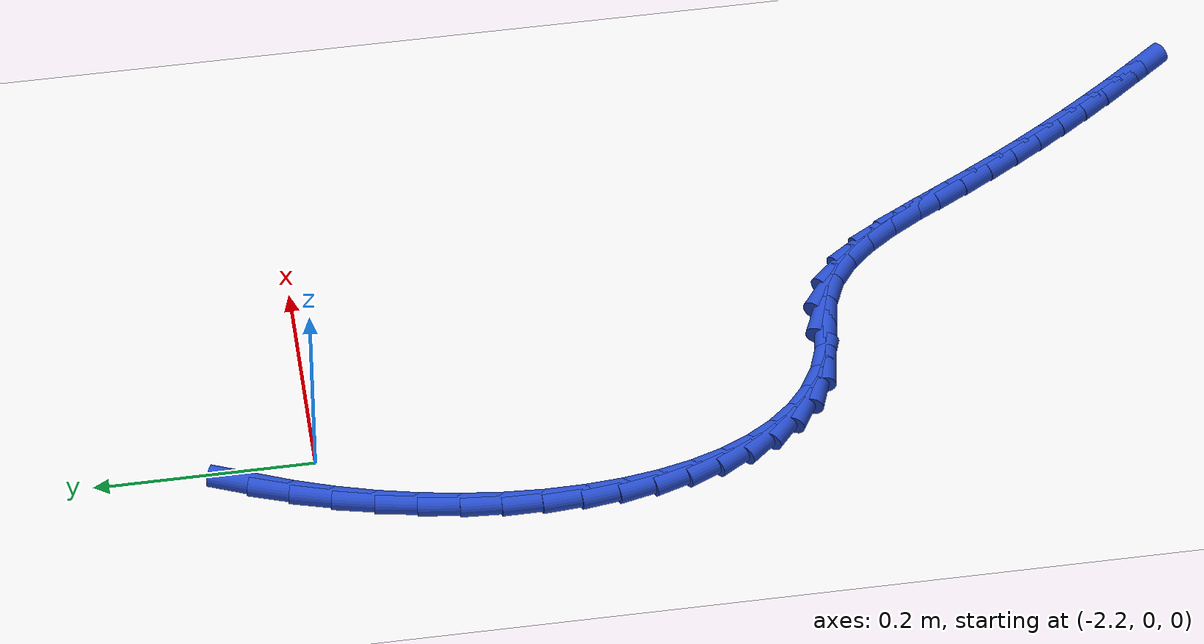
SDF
<sdf version="1.6">
 <world name="default">
  <model name="ground_plane">
   <static>1</static>
   <link name="link">
    <collision name="collision">
     <geometry><plane><normal>0 0 1</normal><size>100 100</size></plane></geometry>
     <surface><friction><ode><mu>100</mu><mu2>50</mu2></ode></friction></surface>
    </collision>
    <visual name="visual">
     <cast_shadows>0</cast_shadows>
     <geometry><plane><normal>0 0 1</normal><size>100 100</size></plane></geometry>
     <material>
      <script><uri>file://media/materials/scripts/gazebo.material</uri><name>Gazebo/WhiteGlow</name></script>
     </material>
    </visual>
   </link>
  </model>
  <model name="line">
   <link name="link_144">
    <pose>-2.2232935178708875 0.05914343181187651 0.01 0 1.57 1.1909581856564386</pose>
    <collision name="collision">
     <geometry><cylinder><radius>0.01</radius><length>0.08</length></cylinder></geometry>
    </collision>
    <visual name="visual">
     <material>
      <script><name>Gazebo/Blue</name><uri>file://media/materials/scripts/gazebo.material</uri></script>
     </material>
     <geometry><cylinder><radius>0.01</radius><length>0.08</length></cylinder></geometry>
    </visual>
   </link>
   <link name="link_145">
    <pose>-2.2371132504783184 0.024527035637812396 0.01 0 1.57 1.2481064616466884</pose>
    <collision name="collision">
     <geometry><cylinder><radius>0.01</radius><length>0.08</length></cylinder></geometry>
    </collision>
    <visual name="visual">
     <material>
      <script><name>Gazebo/Blue</name><uri>file://media/materials/scripts/gazebo.material</uri></script>
     </material>
     <geometry><cylinder><radius>0.01</radius><length>0.08</length></cylinder></geometry>
    </visual>
   </link>
   <link name="link_146">
    <pose>-2.249092417443977 -0.011298259810260046 0.01 0 1.57 1.302683260764088</pose>
    <collision name="collision">
     <geometry><cylinder><radius>0.01</radius><length>0.08</length></cylinder></geometry>
    </collision>
    <visual name="visual">
     <material>
      <script><name>Gazebo/Blue</name><uri>file://media/materials/scripts/gazebo.material</uri></script>
     </material>
     <geometry><cylinder><radius>0.01</radius><length>0.08</length></cylinder></geometry>
    </visual>
   </link>
   <link name="link_147">
    <pose>-2.259172961597374 -0.04799111259833887 0.01 0 1.57 1.3558952616473168</pose>
    <collision name="collision">
     <geometry><cylinder><radius>0.01</radius><length>0.08</length></cylinder></geometry>
    </collision>
    <visual name="visual">
     <material>
      <script><name>Gazebo/Blue</name><uri>file://media/materials/scripts/gazebo.material</uri></script>
     </material>
     <geometry><cylinder><radius>0.01</radius><length>0.08</length></cylinder></geometry>
    </visual>
   </link>
   <link name="link_148">
    <pose>-2.2672968257680237 -0.08521018079242569 0.01 0 1.57 1.4088974125330715</pose>
    <collision name="collision">
     <geometry><cylinder><radius>0.01</radius><length>0.08</length></cylinder></geometry>
    </collision>
    <visual name="visual">
     <material>
      <script><name>Gazebo/Blue</name><uri>file://media/materials/scripts/gazebo.material</uri></script>
     </material>
     <geometry><cylinder><radius>0.01</radius><length>0.08</length></cylinder></geometry>
    </visual>
   </link>
   <link name="link_149">
    <pose>-2.2734059527854384 -0.12261412245852099 0.01 0 1.57 1.4628522664942227</pose>
    <collision name="collision">
     <geometry><cylinder><radius>0.01</radius><length>0.08</length></cylinder></geometry>
    </collision>
    <visual name="visual">
     <material>
      <script><name>Gazebo/Blue</name><uri>file://media/materials/scripts/gazebo.material</uri></script>
     </material>
     <geometry><cylinder><radius>0.01</radius><length>0.08</length></cylinder></geometry>
    </visual>
   </link>
   <link name="link_150">
    <pose>-2.2774422854791307 -0.15986159566262514 0.01 0 1.57 1.5189924134073636</pose>
    <collision name="collision">
     <geometry><cylinder><radius>0.01</radius><length>0.08</length></cylinder></geometry>
    </collision>
    <visual name="visual">
     <material>
      <script><name>Gazebo/Blue</name><uri>file://media/materials/scripts/gazebo.material</uri></script>
     </material>
     <geometry><cylinder><radius>0.01</radius><length>0.08</length></cylinder></geometry>
    </visual>
   </link>
   <link name="link_151">
    <pose>-2.279347766678613 -0.1966112584707386 0.01 0 1.57 -1.5629038859340165</pose>
    <collision name="collision">
     <geometry><cylinder><radius>0.01</radius><length>0.08</length></cylinder></geometry>
    </collision>
    <visual name="visual">
     <material>
      <script><name>Gazebo/Blue</name><uri>file://media/materials/scripts/gazebo.material</uri></script>
     </material>
     <geometry><cylinder><radius>0.01</radius><length>0.08</length></cylinder></geometry>
    </visual>
   </link>
   <link name="link_152">
    <pose>-2.2790643392133982 -0.2325217689488618 0.01 0 1.57 -1.4980658673511302</pose>
    <collision name="collision">
     <geometry><cylinder><radius>0.01</radius><length>0.08</length></cylinder></geometry>
    </collision>
    <visual name="visual">
     <material>
      <script><name>Gazebo/Blue</name><uri>file://media/materials/scripts/gazebo.material</uri></script>
     </material>
     <geometry><cylinder><radius>0.01</radius><length>0.08</length></cylinder></geometry>
    </visual>
   </link>
   <link name="link_153">
    <pose>-2.2765339459129996 -0.2672517851629953 0.01 0 1.57 -1.4262033079237824</pose>
    <collision name="collision">
     <geometry><cylinder><radius>0.01</radius><length>0.08</length></cylinder></geometry>
    </collision>
    <visual name="visual">
     <material>
      <script><name>Gazebo/Blue</name><uri>file://media/materials/scripts/gazebo.material</uri></script>
     </material>
     <geometry><cylinder><radius>0.01</radius><length>0.08</length></cylinder></geometry>
    </visual>
   </link>
   <link name="link_154">
    <pose>-2.2716985296069296 -0.3004599651791394 0.01 0 1.57 -1.3450568398601315</pose>
    <collision name="collision">
     <geometry><cylinder><radius>0.01</radius><length>0.08</length></cylinder></geometry>
    </collision>
    <visual name="visual">
     <material>
      <script><name>Gazebo/Blue</name><uri>file://media/materials/scripts/gazebo.material</uri></script>
     </material>
     <geometry><cylinder><radius>0.01</radius><length>0.08</length></cylinder></geometry>
    </visual>
   </link>
   <link name="link_155">
    <pose>-2.2645000331247 -0.3318049670632955 0.01 0 1.57 -1.2519474254234912</pose>
    <collision name="collision">
     <geometry><cylinder><radius>0.01</radius><length>0.08</length></cylinder></geometry>
    </collision>
    <visual name="visual">
     <material>
      <script><name>Gazebo/Blue</name><uri>file://media/materials/scripts/gazebo.material</uri></script>
     </material>
     <geometry><cylinder><radius>0.01</radius><length>0.08</length></cylinder></geometry>
    </visual>
   </link>
   <link name="link_156">
    <pose>-2.254880399295824 -0.36094544888146207 0.01 0 1.57 -1.1438458834669276</pose>
    <collision name="collision">
     <geometry><cylinder><radius>0.01</radius><length>0.08</length></cylinder></geometry>
    </collision>
    <visual name="visual">
     <material>
      <script><name>Gazebo/Blue</name><uri>file://media/materials/scripts/gazebo.material</uri></script>
     </material>
     <geometry><cylinder><radius>0.01</radius><length>0.08</length></cylinder></geometry>
    </visual>
   </link>
   <link name="link_157">
    <pose>-2.2427815709498153 -0.38754006869964075 0.01 0 1.57 -1.0177076871214064</pose>
    <collision name="collision">
     <geometry><cylinder><radius>0.01</radius><length>0.08</length></cylinder></geometry>
    </collision>
    <visual name="visual">
     <material>
      <script><name>Gazebo/Blue</name><uri>file://media/materials/scripts/gazebo.material</uri></script>
     </material>
     <geometry><cylinder><radius>0.01</radius><length>0.08</length></cylinder></geometry>
    </visual>
   </link>
   <link name="link_158">
    <pose>-2.2281454909161855 -0.41124748458383176 0.01 0 1.57 -0.8713028719395888</pose>
    <collision name="collision">
     <geometry><cylinder><radius>0.01</radius><length>0.08</length></cylinder></geometry>
    </collision>
    <visual name="visual">
     <material>
      <script><name>Gazebo/Blue</name><uri>file://media/materials/scripts/gazebo.material</uri></script>
     </material>
     <geometry><cylinder><radius>0.01</radius><length>0.08</length></cylinder></geometry>
    </visual>
   </link>
   <link name="link_159">
    <pose>-2.2109141020244483 -0.43172635460003567 0.01 0 1.57 -0.7046966637945786</pose>
    <collision name="collision">
     <geometry><cylinder><radius>0.01</radius><length>0.08</length></cylinder></geometry>
    </collision>
    <visual name="visual">
     <material>
      <script><name>Gazebo/Blue</name><uri>file://media/materials/scripts/gazebo.material</uri></script>
     </material>
     <geometry><cylinder><radius>0.01</radius><length>0.08</length></cylinder></geometry>
    </visual>
   </link>
   <link name="link_160">
    <pose>-2.191029347104115 -0.4486353368142528 0.01 0 1.57 -0.5219988983153278</pose>
    <collision name="collision">
     <geometry><cylinder><radius>0.01</radius><length>0.08</length></cylinder></geometry>
    </collision>
    <visual name="visual">
     <material>
      <script><name>Gazebo/Blue</name><uri>file://media/materials/scripts/gazebo.material</uri></script>
     </material>
     <geometry><cylinder><radius>0.01</radius><length>0.08</length></cylinder></geometry>
    </visual>
   </link>
   <link name="link_161">
    <pose>-2.1684331689846994 -0.4616330892924838 0.01 0 1.57 -0.3320031634079429</pose>
    <collision name="collision">
     <geometry><cylinder><radius>0.01</radius><length>0.08</length></cylinder></geometry>
    </collision>
    <visual name="visual">
     <material>
      <script><name>Gazebo/Blue</name><uri>file://media/materials/scripts/gazebo.material</uri></script>
     </material>
     <geometry><cylinder><radius>0.01</radius><length>0.08</length></cylinder></geometry>
    </visual>
   </link>
   <link name="link_162">
    <pose>-2.143067510495714 -0.47037827010072886 0.01 0 1.57 -0.168473446146424</pose>
    <collision name="collision">
     <geometry><cylinder><radius>0.01</radius><length>0.08</length></cylinder></geometry>
    </collision>
    <visual name="visual">
     <material>
      <script><name>Gazebo/Blue</name><uri>file://media/materials/scripts/gazebo.material</uri></script>
     </material>
     <geometry><cylinder><radius>0.01</radius><length>0.08</length></cylinder></geometry>
    </visual>
   </link>
   <link name="link_163">
    <pose>-2.1152047495696653 -0.47511732722055156 0.01 0 1.57 -0.17663507218185626</pose>
    <collision name="collision">
     <geometry><cylinder><radius>0.01</radius><length>0.08</length></cylinder></geometry>
    </collision>
    <visual name="visual">
     <material>
      <script><name>Gazebo/Blue</name><uri>file://media/materials/scripts/gazebo.material</uri></script>
     </material>
     <geometry><cylinder><radius>0.01</radius><length>0.08</length></cylinder></geometry>
    </visual>
   </link>
   <link name="link_164">
    <pose>-2.0873606721551594 -0.48008736397373003 0.01 0 1.57 -0.39094252216450837</pose>
    <collision name="collision">
     <geometry><cylinder><radius>0.01</radius><length>0.08</length></cylinder></geometry>
    </collision>
    <visual name="visual">
     <material>
      <script><name>Gazebo/Blue</name><uri>file://media/materials/scripts/gazebo.material</uri></script>
     </material>
     <geometry><cylinder><radius>0.01</radius><length>0.08</length></cylinder></geometry>
    </visual>
   </link>
   <link name="link_165">
    <pose>-2.062493756961471 -0.4903364400984581 0.01 0 1.57 -0.6362762082028802</pose>
    <collision name="collision">
     <geometry><cylinder><radius>0.01</radius><length>0.08</length></cylinder></geometry>
    </collision>
    <visual name="visual">
     <material>
      <script><name>Gazebo/Blue</name><uri>file://media/materials/scripts/gazebo.material</uri></script>
     </material>
     <geometry><cylinder><radius>0.01</radius><length>0.08</length></cylinder></geometry>
    </visual>
   </link>
   <link name="link_166">
    <pose>-2.0408939595307753 -0.5062937600247142 0.01 0 1.57 -0.8253453575427293</pose>
    <collision name="collision">
     <geometry><cylinder><radius>0.01</radius><length>0.08</length></cylinder></geometry>
    </collision>
    <visual name="visual">
     <material>
      <script><name>Gazebo/Blue</name><uri>file://media/materials/scripts/gazebo.material</uri></script>
     </material>
     <geometry><cylinder><radius>0.01</radius><length>0.08</length></cylinder></geometry>
    </visual>
   </link>
   <link name="link_167">
    <pose>-2.0219452116553547 -0.5268202731594737 0.01 0 1.57 -0.9559992593069658</pose>
    <collision name="collision">
     <geometry><cylinder><radius>0.01</radius><length>0.08</length></cylinder></geometry>
    </collision>
    <visual name="visual">
     <material>
      <script><name>Gazebo/Blue</name><uri>file://media/materials/scripts/gazebo.material</uri></script>
     </material>
     <geometry><cylinder><radius>0.01</radius><length>0.08</length></cylinder></geometry>
    </visual>
   </link>
   <link name="link_168">
    <pose>-2.005030712358862 -0.5507756605455167 0.01 0 1.57 -1.0373913053593904</pose>
    <collision name="collision">
     <geometry><cylinder><radius>0.01</radius><length>0.08</length></cylinder></geometry>
    </collision>
    <visual name="visual">
     <material>
      <script><name>Gazebo/Blue</name><uri>file://media/materials/scripts/gazebo.material</uri></script>
     </material>
     <geometry><cylinder><radius>0.01</radius><length>0.08</length></cylinder></geometry>
    </visual>
   </link>
   <link name="link_169">
    <pose>-1.989533660664949 -0.5770196032256224 0.01 0 1.57 -1.0783626423560906</pose>
    <collision name="collision">
     <geometry><cylinder><radius>0.01</radius><length>0.08</length></cylinder></geometry>
    </collision>
    <visual name="visual">
     <material>
      <script><name>Gazebo/Blue</name><uri>file://media/materials/scripts/gazebo.material</uri></script>
     </material>
     <geometry><cylinder><radius>0.01</radius><length>0.08</length></cylinder></geometry>
    </visual>
   </link>
   <link name="link_170">
    <pose>-1.9748372555972697 -0.6044117822425706 0.01 0 1.57 -1.0838154334837462</pose>
    <collision name="collision">
     <geometry><cylinder><radius>0.01</radius><length>0.08</length></cylinder></geometry>
    </collision>
    <visual name="visual">
     <material>
      <script><name>Gazebo/Blue</name><uri>file://media/materials/scripts/gazebo.material</uri></script>
     </material>
     <geometry><cylinder><radius>0.01</radius><length>0.08</length></cylinder></geometry>
    </visual>
   </link>
   <link name="link_171">
    <pose>-1.9603265804082974 -0.6318154234158408 0.01 0 1.57 -1.0658333946394771</pose>
    <collision name="collision">
     <geometry><cylinder><radius>0.01</radius><length>0.08</length></cylinder></geometry>
    </collision>
    <visual name="visual">
     <material>
      <script><name>Gazebo/Blue</name><uri>file://media/materials/scripts/gazebo.material</uri></script>
     </material>
     <geometry><cylinder><radius>0.01</radius><length>0.08</length></cylinder></geometry>
    </visual>
   </link>
   <link name="link_172">
    <pose>-1.9455897389411476 -0.6584756927255886 0.01 0 1.57 -1.0457022384111296</pose>
    <collision name="collision">
     <geometry><cylinder><radius>0.01</radius><length>0.08</length></cylinder></geometry>
    </collision>
    <visual name="visual">
     <material>
      <script><name>Gazebo/Blue</name><uri>file://media/materials/scripts/gazebo.material</uri></script>
     </material>
     <geometry><cylinder><radius>0.01</radius><length>0.08</length></cylinder></geometry>
    </visual>
   </link>
   <link name="link_173">
    <pose>-1.9305963668901465 -0.684355527369646 0.01 0 1.57 -1.025907415441177</pose>
    <collision name="collision">
     <geometry><cylinder><radius>0.01</radius><length>0.08</length></cylinder></geometry>
    </collision>
    <visual name="visual">
     <material>
      <script><name>Gazebo/Blue</name><uri>file://media/materials/scripts/gazebo.material</uri></script>
     </material>
     <geometry><cylinder><radius>0.01</radius><length>0.08</length></cylinder></geometry>
    </visual>
   </link>
   <link name="link_174">
    <pose>-1.9153582051173415 -0.7094970764842643 0.01 0 1.57 -1.006544773903409</pose>
    <collision name="collision">
     <geometry><cylinder><radius>0.01</radius><length>0.08</length></cylinder></geometry>
    </collision>
    <visual name="visual">
     <material>
      <script><name>Gazebo/Blue</name><uri>file://media/materials/scripts/gazebo.material</uri></script>
     </material>
     <geometry><cylinder><radius>0.01</radius><length>0.08</length></cylinder></geometry>
    </visual>
   </link>
   <link name="link_175">
    <pose>-1.8998869944847794 -0.7339424892056973 0.01 0 1.57 -0.9877109511625048</pose>
    <collision name="collision">
     <geometry><cylinder><radius>0.01</radius><length>0.08</length></cylinder></geometry>
    </collision>
    <visual name="visual">
     <material>
      <script><name>Gazebo/Blue</name><uri>file://media/materials/scripts/gazebo.material</uri></script>
     </material>
     <geometry><cylinder><radius>0.01</radius><length>0.08</length></cylinder></geometry>
    </visual>
   </link>
   <link name="link_176">
    <pose>-1.8841944758545064 -0.7577339146701978 0.01 0 1.57 -0.9695021869314759</pose>
    <collision name="collision">
     <geometry><cylinder><radius>0.01</radius><length>0.08</length></cylinder></geometry>
    </collision>
    <visual name="visual">
     <material>
      <script><name>Gazebo/Blue</name><uri>file://media/materials/scripts/gazebo.material</uri></script>
     </material>
     <geometry><cylinder><radius>0.01</radius><length>0.08</length></cylinder></geometry>
    </visual>
   </link>
   <link name="link_177">
    <pose>-1.8682923900885697 -0.7809135020140187 0.01 0 1.57 -0.9520131429325907</pose>
    <collision name="collision">
     <geometry><cylinder><radius>0.01</radius><length>0.08</length></cylinder></geometry>
    </collision>
    <visual name="visual">
     <material>
      <script><name>Gazebo/Blue</name><uri>file://media/materials/scripts/gazebo.material</uri></script>
     </material>
     <geometry><cylinder><radius>0.01</radius><length>0.08</length></cylinder></geometry>
    </visual>
   </link>
   <link name="link_178">
    <pose>-1.852192478049016 -0.8035234003734133 0.01 0 1.57 -0.9353357650574108</pose>
    <collision name="collision">
     <geometry><cylinder><radius>0.01</radius><length>0.08</length></cylinder></geometry>
    </collision>
    <visual name="visual">
     <material>
      <script><name>Gazebo/Blue</name><uri>file://media/materials/scripts/gazebo.material</uri></script>
     </material>
     <geometry><cylinder><radius>0.01</radius><length>0.08</length></cylinder></geometry>
    </visual>
   </link>
  </model>
 </world>
</sdf>
